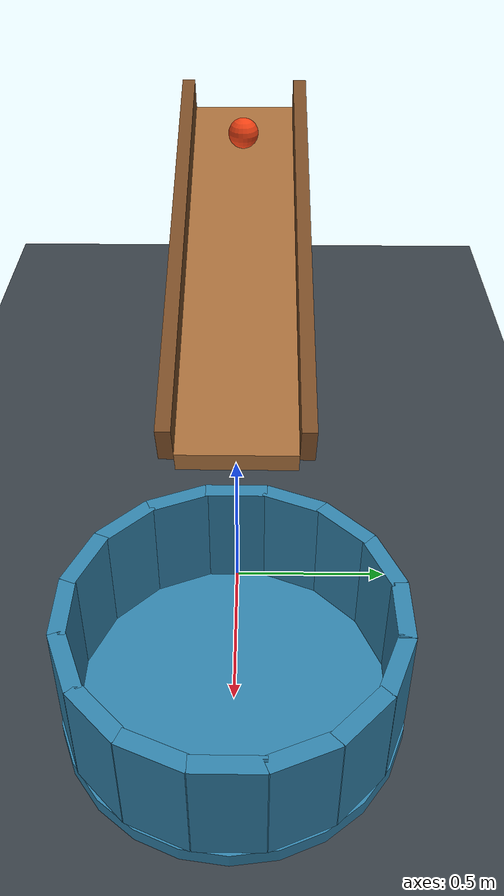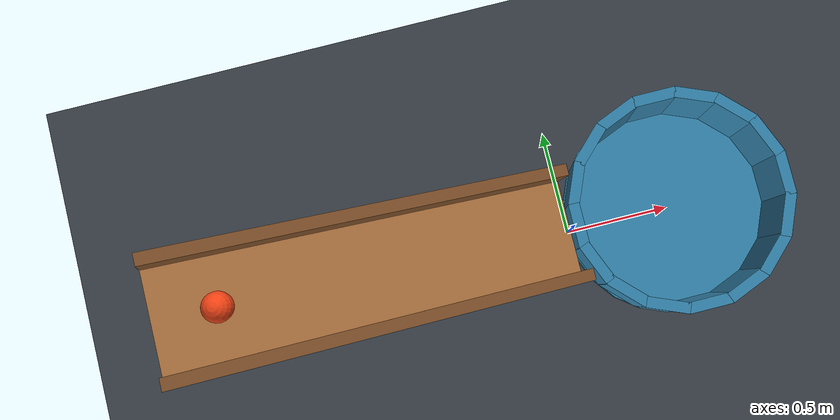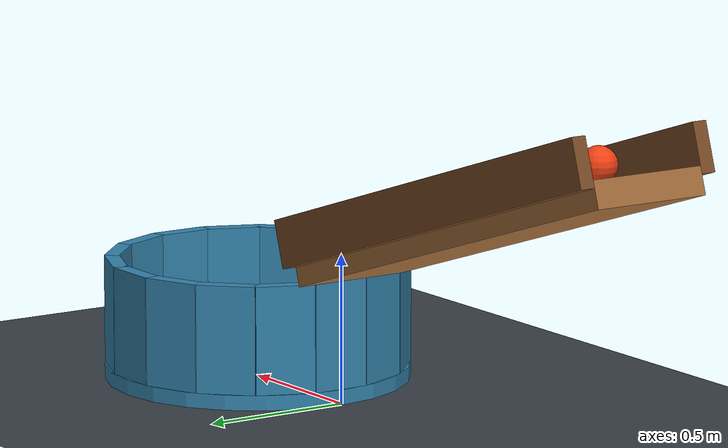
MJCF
<mujoco model="ball_rolls_into_cup">
  <compiler angle="degree"/>
  <option timestep="0.002" gravity="0 0 -9.81" integrator="implicitfast" cone="elliptic" iterations="100"/>
  <statistic center="-0.4 0 0.45" extent="2.6"/>

  <visual>
    <headlight ambient="0.3 0.3 0.3" diffuse="0.6 0.6 0.6" specular="0.2 0.2 0.2"/>
  </visual>

  <worldbody>
    <light name="key_light" pos="-1 -2 4" dir="0.2 0.3 -1" diffuse="0.8 0.8 0.8"/>
    <camera name="overview" pos="2.7 -3.3 2.3" xyaxes="0.78 0.63 0 -0.28 0.35 0.89"/>

    <geom name="floor" type="plane" pos="0 0 0" size="4 4 0.1" rgba="0.22 0.25 0.28 1" condim="6" friction="1 0.05 0.04"/>

    <!-- The local x axis points downhill. Rails keep the ball on the deck. -->
    <body name="ramp" pos="-0.85 0 0.73" euler="0 18 0">
      <geom name="ramp_deck" type="box" size="0.85 0.20 0.045" rgba="0.65 0.43 0.23 1" priority="1" condim="3" friction="0.8 0.005 0.0001" solref="0.012 1" solimp="0.95 0.99 0.001"/>
      <geom name="ramp_rail_left" type="box" pos="0 0.225 0.10" size="0.85 0.025 0.08" rgba="0.48 0.30 0.15 1" priority="1" condim="3" friction="0.8 0.005 0.0001"/>
      <geom name="ramp_rail_right" type="box" pos="0 -0.225 0.10" size="0.85 0.025 0.08" rgba="0.48 0.30 0.15 1" priority="1" condim="3" friction="0.8 0.005 0.0001"/>
    </body>

    <body name="cup" pos="0.5 0 0">
      <geom name="cup_bottom" type="cylinder" pos="0 0 0.025" size="0.51 0.025" rgba="0.20 0.52 0.68 1" priority="2" condim="6" friction="1.2 0.08 0.06" solref="0.01 1" solimp="0.95 0.99 0.001"/>
      <geom name="cup_wall_00" type="box" pos="0.475 0 0.23" euler="0 0 0" size="0.025 0.098 0.18" rgba="0.20 0.52 0.68 1" priority="2" condim="6" friction="1.2 0.08 0.06" solref="0.01 1" solimp="0.95 0.99 0.001"/>
      <geom name="cup_wall_01" type="box" pos="0.438843 0.181775 0.23" euler="0 0 22.5" size="0.025 0.098 0.18" rgba="0.20 0.52 0.68 1" priority="2" condim="6" friction="1.2 0.08 0.06" solref="0.01 1" solimp="0.95 0.99 0.001"/>
      <geom name="cup_wall_02" type="box" pos="0.335876 0.335876 0.23" euler="0 0 45" size="0.025 0.098 0.18" rgba="0.20 0.52 0.68 1" priority="2" condim="6" friction="1.2 0.08 0.06" solref="0.01 1" solimp="0.95 0.99 0.001"/>
      <geom name="cup_wall_03" type="box" pos="0.181775 0.438843 0.23" euler="0 0 67.5" size="0.025 0.098 0.18" rgba="0.20 0.52 0.68 1" priority="2" condim="6" friction="1.2 0.08 0.06" solref="0.01 1" solimp="0.95 0.99 0.001"/>
      <geom name="cup_wall_04" type="box" pos="0 0.475 0.23" euler="0 0 90" size="0.025 0.098 0.18" rgba="0.20 0.52 0.68 1" priority="2" condim="6" friction="1.2 0.08 0.06" solref="0.01 1" solimp="0.95 0.99 0.001"/>
      <geom name="cup_wall_05" type="box" pos="-0.181775 0.438843 0.23" euler="0 0 112.5" size="0.025 0.098 0.18" rgba="0.20 0.52 0.68 1" priority="2" condim="6" friction="1.2 0.08 0.06" solref="0.01 1" solimp="0.95 0.99 0.001"/>
      <geom name="cup_wall_06" type="box" pos="-0.335876 0.335876 0.23" euler="0 0 135" size="0.025 0.098 0.18" rgba="0.20 0.52 0.68 1" priority="2" condim="6" friction="1.2 0.08 0.06" solref="0.01 1" solimp="0.95 0.99 0.001"/>
      <geom name="cup_wall_07" type="box" pos="-0.438843 0.181775 0.23" euler="0 0 157.5" size="0.025 0.098 0.18" rgba="0.20 0.52 0.68 1" priority="2" condim="6" friction="1.2 0.08 0.06" solref="0.01 1" solimp="0.95 0.99 0.001"/>
      <geom name="cup_wall_08" type="box" pos="-0.475 0 0.23" euler="0 0 180" size="0.025 0.098 0.18" rgba="0.20 0.52 0.68 1" priority="2" condim="6" friction="1.2 0.08 0.06" solref="0.01 1" solimp="0.95 0.99 0.001"/>
      <geom name="cup_wall_09" type="box" pos="-0.438843 -0.181775 0.23" euler="0 0 202.5" size="0.025 0.098 0.18" rgba="0.20 0.52 0.68 1" priority="2" condim="6" friction="1.2 0.08 0.06" solref="0.01 1" solimp="0.95 0.99 0.001"/>
      <geom name="cup_wall_10" type="box" pos="-0.335876 -0.335876 0.23" euler="0 0 225" size="0.025 0.098 0.18" rgba="0.20 0.52 0.68 1" priority="2" condim="6" friction="1.2 0.08 0.06" solref="0.01 1" solimp="0.95 0.99 0.001"/>
      <geom name="cup_wall_11" type="box" pos="-0.181775 -0.438843 0.23" euler="0 0 247.5" size="0.025 0.098 0.18" rgba="0.20 0.52 0.68 1" priority="2" condim="6" friction="1.2 0.08 0.06" solref="0.01 1" solimp="0.95 0.99 0.001"/>
      <geom name="cup_wall_12" type="box" pos="0 -0.475 0.23" euler="0 0 270" size="0.025 0.098 0.18" rgba="0.20 0.52 0.68 1" priority="2" condim="6" friction="1.2 0.08 0.06" solref="0.01 1" solimp="0.95 0.99 0.001"/>
      <geom name="cup_wall_13" type="box" pos="0.181775 -0.438843 0.23" euler="0 0 292.5" size="0.025 0.098 0.18" rgba="0.20 0.52 0.68 1" priority="2" condim="6" friction="1.2 0.08 0.06" solref="0.01 1" solimp="0.95 0.99 0.001"/>
      <geom name="cup_wall_14" type="box" pos="0.335876 -0.335876 0.23" euler="0 0 315" size="0.025 0.098 0.18" rgba="0.20 0.52 0.68 1" priority="2" condim="6" friction="1.2 0.08 0.06" solref="0.01 1" solimp="0.95 0.99 0.001"/>
      <geom name="cup_wall_15" type="box" pos="0.438843 -0.181775 0.23" euler="0 0 337.5" size="0.025 0.098 0.18" rgba="0.20 0.52 0.68 1" priority="2" condim="6" friction="1.2 0.08 0.06" solref="0.01 1" solimp="0.95 0.99 0.001"/>
    </body>

    <body name="ball" pos="-1.4 0 1.02">
      <freejoint/>
      <geom name="ball" type="sphere" size="0.06" density="600" rgba="0.95 0.26 0.08 1" condim="3" friction="0.8 0.005 0.0001" solref="0.01 1" solimp="0.95 0.99 0.001"/>
    </body>
  </worldbody>

  <keyframe>
    <key name="start" qpos="-1.4 0 1.02 1 0 0 0" qvel="0 0 0 0 0 0"/>
  </keyframe>
</mujoco>
